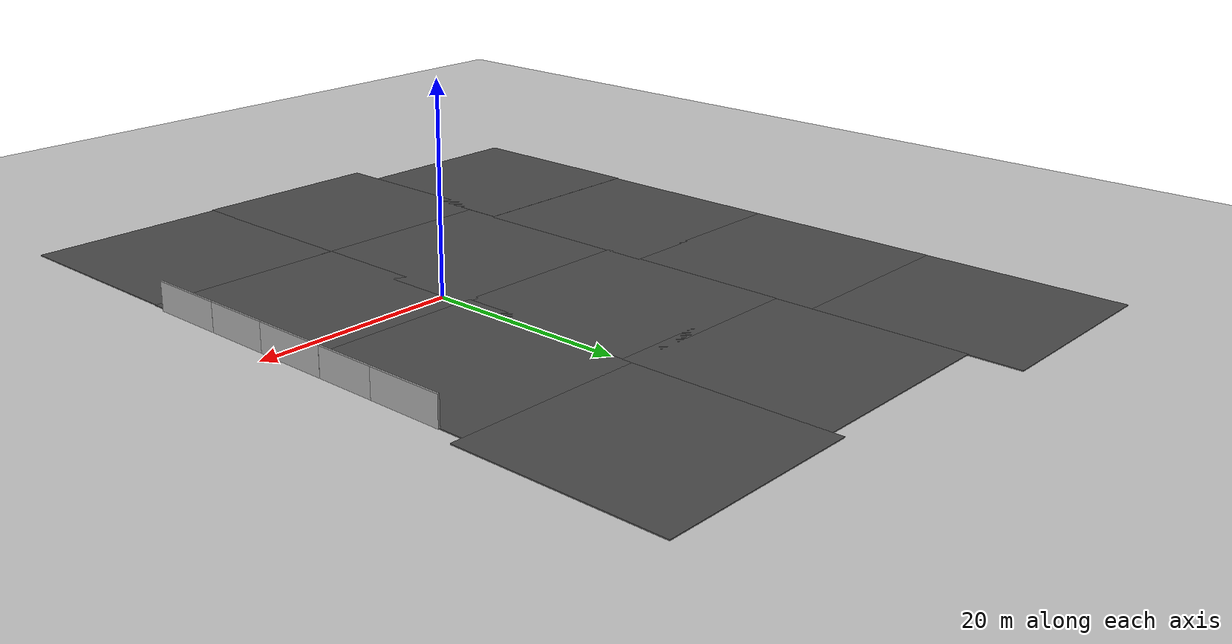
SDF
<sdf version="1.7">
 <world name="default">
  <light name="sun" type="directional">
   <pose>0 0 10 0 -0 0</pose>
   <diffuse>0.8 0.8 0.8 1</diffuse>
   <specular>0.2 0.2 0.2 1</specular>
   <attenuation>
    <range>1000</range>
    <constant>0.9</constant>
    <linear>0.01</linear>
    <quadratic>0.001</quadratic>
   </attenuation>
   <direction>-0.5 0.1 -0.9</direction>
   <spot><inner_angle>0</inner_angle><outer_angle>0</outer_angle><falloff>0</falloff></spot>
  </light>
  <model name="ground_plane">
   <static>1</static>
   <link name="link">
    <collision name="collision">
     <geometry><plane><normal>0 0 1</normal><size>100 100</size></plane></geometry>
     <surface><friction><ode><mu>100</mu><mu2>50</mu2></ode></friction></surface>
    </collision>
    <visual name="visual">
     <cast_shadows>0</cast_shadows>
     <geometry><plane><normal>0 0 1</normal><size>100 100</size></plane></geometry>
     <material>
      <script><uri>file://media/materials/scripts/gazebo.material</uri><name>Gazebo/Grey</name></script>
     </material>
    </visual>
   </link>
  </model>
  <gravity>0 0 -9.8</gravity>
  <magnetic_field>6e-06 2.3e-05 -4.2e-05</magnetic_field>
  <atmosphere type="adiabatic"/>
  <physics type="ode">
   <max_step_size>0.001</max_step_size>
   <real_time_factor>1</real_time_factor>
   <real_time_update_rate>1000</real_time_update_rate>
  </physics>
  <scene><ambient>0.4 0.4 0.4 1</ambient><background>0.7 0.7 0.7 1</background><shadows>1</shadows></scene>
  <spherical_coordinates>
   <surface_model>EARTH_WGS84</surface_model>
   <latitude_deg>0</latitude_deg>
   <longitude_deg>0</longitude_deg>
   <elevation>0</elevation>
   <heading_deg>0</heading_deg>
  </spherical_coordinates>
  <model name="asphalt_plane">
   <static>1</static>
   <link name="link">
    <collision name="collision">
     <geometry><box><size>20 20 0.1</size></box></geometry>
     <surface><friction><ode><mu>100</mu><mu2>50</mu2></ode></friction></surface>
    </collision>
    <visual name="visual">
     <cast_shadows>0</cast_shadows>
     <geometry><box><size>20 20 0.1</size></box></geometry>
     <material>
      <script>
       <uri>model://asphalt_plane/materials/scripts</uri>
       <uri>model://asphalt_plane/materials/textures</uri>
       <name>vrc/asphalt</name>
      </script>
     </material>
    </visual>
   </link>
   <pose>-10.1692 -7.43707 0 0 -0 0</pose>
  </model>
  <model name="asphalt_plane_clone">
   <static>1</static>
   <link name="link">
    <collision name="collision">
     <geometry><box><size>20 20 0.1</size></box></geometry>
     <surface><friction><ode><mu>100</mu><mu2>50</mu2></ode></friction></surface>
    </collision>
    <visual name="visual">
     <cast_shadows>0</cast_shadows>
     <geometry><box><size>20 20 0.1</size></box></geometry>
     <material>
      <script>
       <uri>model://asphalt_plane/materials/scripts</uri>
       <uri>model://asphalt_plane/materials/textures</uri>
       <name>vrc/asphalt</name>
      </script>
     </material>
    </visual>
   </link>
   <pose>-10.1603 12.171 0 0 -0 0</pose>
  </model>
  <model name="asphalt_plane_clone_clone">
   <static>1</static>
   <link name="link">
    <collision name="collision">
     <geometry><box><size>20 20 0.1</size></box></geometry>
     <surface><friction><ode><mu>100</mu><mu2>50</mu2></ode></friction></surface>
    </collision>
    <visual name="visual">
     <cast_shadows>0</cast_shadows>
     <geometry><box><size>20 20 0.1</size></box></geometry>
     <material>
      <script>
       <uri>model://asphalt_plane/materials/scripts</uri>
       <uri>model://asphalt_plane/materials/textures</uri>
       <name>vrc/asphalt</name>
      </script>
     </material>
    </visual>
   </link>
   <pose>8.71597 12.1785 0 0 -0 0</pose>
  </model>
  <model name="asphalt_plane_clone_clone_0">
   <static>1</static>
   <link name="link">
    <collision name="collision">
     <geometry><box><size>20 20 0.1</size></box></geometry>
     <surface><friction><ode><mu>100</mu><mu2>50</mu2></ode></friction></surface>
    </collision>
    <visual name="visual">
     <cast_shadows>0</cast_shadows>
     <geometry><box><size>20 20 0.1</size></box></geometry>
     <material>
      <script>
       <uri>model://asphalt_plane/materials/scripts</uri>
       <uri>model://asphalt_plane/materials/textures</uri>
       <name>vrc/asphalt</name>
      </script>
     </material>
    </visual>
   </link>
   <pose>8.60996 -7.34898 0 0 -0 0</pose>
  </model>
  <model name="grey_wall_clone_clone_clone">
   <static>1</static>
   <link name="link">
    <pose>0 0 1.4 0 -0 0</pose>
    <collision name="collision"><geometry><box><size>7.5 0.2 2.8</size></box></geometry></collision>
    <visual name="visual">
     <cast_shadows>0</cast_shadows>
     <geometry><box><size>7.5 0.2 2.8</size></box></geometry>
     <material>
      <script>
       <uri>model://grey_wall/materials/scripts</uri>
       <uri>model://grey_wall/materials/textures</uri>
       <name>vrc/grey_wall</name>
      </script>
     </material>
    </visual>
   </link>
   <pose>18.7544 16.0387 0 0 0 -1.56734</pose>
  </model>
  <model name="grey_wall_clone_clone_clone_clone">
   <static>1</static>
   <link name="link">
    <pose>0 0 1.4 0 -0 0</pose>
    <collision name="collision"><geometry><box><size>7.5 0.2 2.8</size></box></geometry></collision>
    <visual name="visual">
     <cast_shadows>0</cast_shadows>
     <geometry><box><size>7.5 0.2 2.8</size></box></geometry>
     <material>
      <script>
       <uri>model://grey_wall/materials/scripts</uri>
       <uri>model://grey_wall/materials/textures</uri>
       <name>vrc/grey_wall</name>
      </script>
     </material>
    </visual>
   </link>
   <pose>18.767 9.41754 0 0 0 -1.56734</pose>
  </model>
  <model name="grey_wall_clone_clone_clone_clone_0">
   <static>1</static>
   <link name="link">
    <pose>0 0 1.4 0 -0 0</pose>
    <collision name="collision"><geometry><box><size>7.5 0.2 2.8</size></box></geometry></collision>
    <visual name="visual">
     <cast_shadows>0</cast_shadows>
     <geometry><box><size>7.5 0.2 2.8</size></box></geometry>
     <material>
      <script>
       <uri>model://grey_wall/materials/scripts</uri>
       <uri>model://grey_wall/materials/textures</uri>
       <name>vrc/grey_wall</name>
      </script>
     </material>
    </visual>
   </link>
   <pose>18.7963 2.45369 0 0 0 -1.56734</pose>
  </model>
  <model name="grey_wall_clone_clone_clone_clone_1">
   <static>1</static>
   <link name="link">
    <pose>0 0 1.4 0 -0 0</pose>
    <collision name="collision"><geometry><box><size>7.5 0.2 2.8</size></box></geometry></collision>
    <visual name="visual">
     <cast_shadows>0</cast_shadows>
     <geometry><box><size>7.5 0.2 2.8</size></box></geometry>
     <material>
      <script>
       <uri>model://grey_wall/materials/scripts</uri>
       <uri>model://grey_wall/materials/textures</uri>
       <name>vrc/grey_wall</name>
      </script>
     </material>
    </visual>
   </link>
   <pose>18.8058 -4.41342 0 0 0 -1.56734</pose>
  </model>
  <model name="grey_wall_clone_clone_clone_clone_2">
   <static>1</static>
   <link name="link">
    <pose>0 0 1.4 0 -0 0</pose>
    <collision name="collision"><geometry><box><size>7.5 0.2 2.8</size></box></geometry></collision>
    <visual name="visual">
     <cast_shadows>0</cast_shadows>
     <geometry><box><size>7.5 0.2 2.8</size></box></geometry>
     <material>
      <script>
       <uri>model://grey_wall/materials/scripts</uri>
       <uri>model://grey_wall/materials/textures</uri>
       <name>vrc/grey_wall</name>
      </script>
     </material>
    </visual>
   </link>
   <pose>18.8343 -11.7301 0 0 0 -1.56734</pose>
  </model>
  <model name="asphalt_plane_0">
   <static>1</static>
   <link name="link">
    <collision name="collision"><geometry><box><size>20 20 0.1</size></box></geometry></collision>
    <visual name="visual">
     <cast_shadows>0</cast_shadows>
     <geometry><box><size>20 20 0.1</size></box></geometry>
     <material>
      <script>
       <uri>model://asphalt_plane/materials/scripts</uri>
       <uri>model://asphalt_plane/materials/textures</uri>
       <name>vrc/asphalt</name>
      </script>
     </material>
    </visual>
   </link>
   <pose>-29.9606 15.9901 0 0 -0 0</pose>
  </model>
  <model name="asphalt_plane_1">
   <static>1</static>
   <link name="link">
    <collision name="collision"><geometry><box><size>20 20 0.1</size></box></geometry></collision>
    <visual name="visual">
     <cast_shadows>0</cast_shadows>
     <geometry><box><size>20 20 0.1</size></box></geometry>
     <material>
      <script>
       <uri>model://asphalt_plane/materials/scripts</uri>
       <uri>model://asphalt_plane/materials/textures</uri>
       <name>vrc/asphalt</name>
      </script>
     </material>
    </visual>
   </link>
   <pose>-29.9827 -3.75846 0 0 -0 0</pose>
  </model>
  <model name="asphalt_plane_2">
   <static>1</static>
   <link name="link">
    <collision name="collision"><geometry><box><size>20 20 0.1</size></box></geometry></collision>
    <visual name="visual">
     <cast_shadows>0</cast_shadows>
     <geometry><box><size>20 20 0.1</size></box></geometry>
     <material>
      <script>
       <uri>model://asphalt_plane/materials/scripts</uri>
       <uri>model://asphalt_plane/materials/textures</uri>
       <name>vrc/asphalt</name>
      </script>
     </material>
    </visual>
   </link>
   <pose>-10.0766 31.113 0 0 -0 0</pose>
  </model>
  <model name="asphalt_plane_3">
   <static>1</static>
   <link name="link">
    <collision name="collision"><geometry><box><size>20 20 0.1</size></box></geometry></collision>
    <visual name="visual">
     <cast_shadows>0</cast_shadows>
     <geometry><box><size>20 20 0.1</size></box></geometry>
     <material>
      <script>
       <uri>model://asphalt_plane/materials/scripts</uri>
       <uri>model://asphalt_plane/materials/textures</uri>
       <name>vrc/asphalt</name>
      </script>
     </material>
    </visual>
   </link>
   <pose>9.89371 32.1385 0 0 -0 0</pose>
  </model>
  <model name="asphalt_plane_4">
   <static>1</static>
   <link name="link">
    <collision name="collision"><geometry><box><size>20 20 0.1</size></box></geometry></collision>
    <visual name="visual">
     <cast_shadows>0</cast_shadows>
     <geometry><box><size>20 20 0.1</size></box></geometry>
     <material>
      <script>
       <uri>model://asphalt_plane/materials/scripts</uri>
       <uri>model://asphalt_plane/materials/textures</uri>
       <name>vrc/asphalt</name>
      </script>
     </material>
    </visual>
   </link>
   <pose>-29.9299 35.9871 0 0 -0 0</pose>
  </model>
  <model name="asphalt_plane_5">
   <static>1</static>
   <link name="link">
    <collision name="collision"><geometry><box><size>20 20 0.1</size></box></geometry></collision>
    <visual name="visual">
     <cast_shadows>0</cast_shadows>
     <geometry><box><size>20 20 0.1</size></box></geometry>
     <material>
      <script>
       <uri>model://asphalt_plane/materials/scripts</uri>
       <uri>model://asphalt_plane/materials/textures</uri>
       <name>vrc/asphalt</name>
      </script>
     </material>
    </visual>
   </link>
   <pose>8.55021 -27.165 0 0 -0 0</pose>
  </model>
  <model name="asphalt_plane_6">
   <static>1</static>
   <link name="link">
    <collision name="collision"><geometry><box><size>20 20 0.1</size></box></geometry></collision>
    <visual name="visual">
     <cast_shadows>0</cast_shadows>
     <geometry><box><size>20 20 0.1</size></box></geometry>
     <material>
      <script>
       <uri>model://asphalt_plane/materials/scripts</uri>
       <uri>model://asphalt_plane/materials/textures</uri>
       <name>vrc/asphalt</name>
      </script>
     </material>
    </visual>
   </link>
   <pose>-11.3489 -27.4081 0 0 -0 0</pose>
  </model>
  <model name="asphalt_plane_7">
   <static>1</static>
   <link name="link">
    <collision name="collision"><geometry><box><size>20 20 0.1</size></box></geometry></collision>
    <visual name="visual">
     <cast_shadows>0</cast_shadows>
     <geometry><box><size>20 20 0.1</size></box></geometry>
     <material>
      <script>
       <uri>model://asphalt_plane/materials/scripts</uri>
       <uri>model://asphalt_plane/materials/textures</uri>
       <name>vrc/asphalt</name>
      </script>
     </material>
    </visual>
   </link>
   <pose>-30.2107 -23.7813 0 0 -0 0</pose>
  </model>
 </world>
</sdf>
